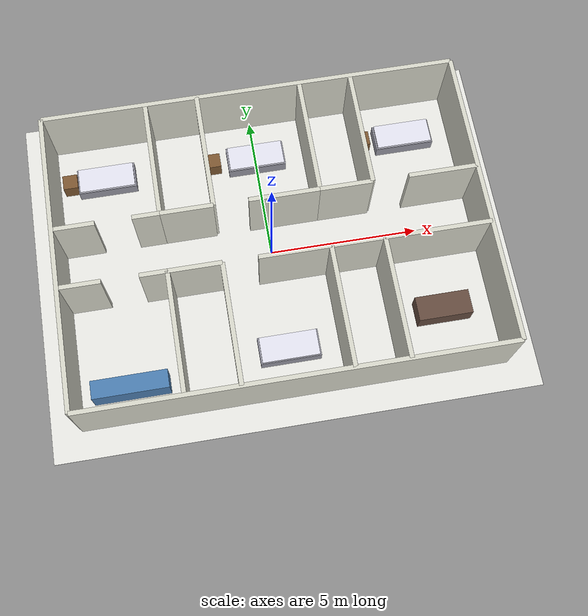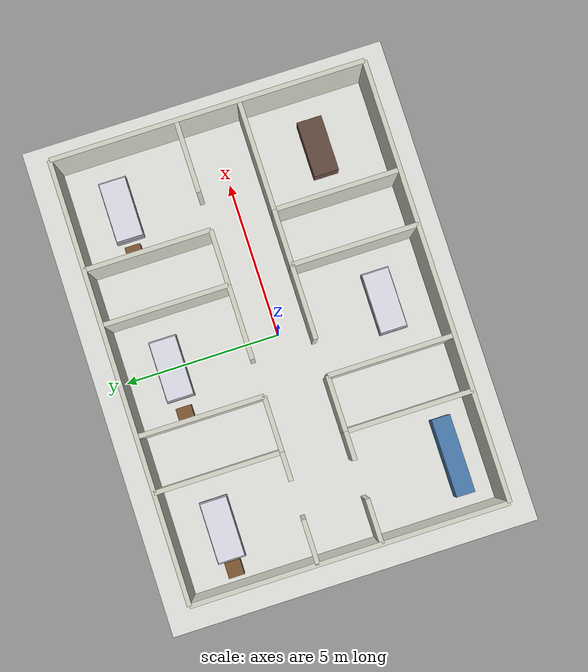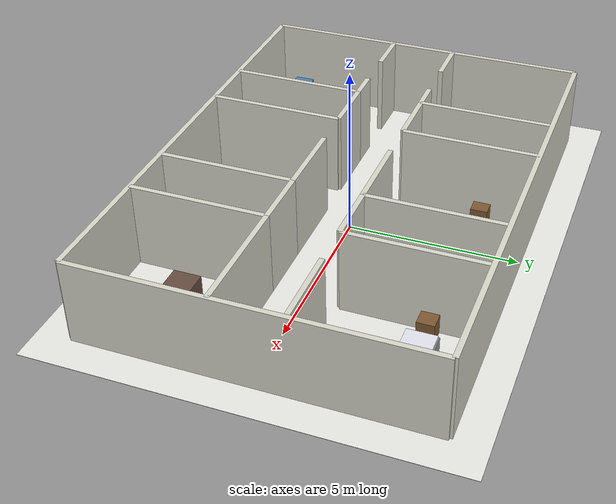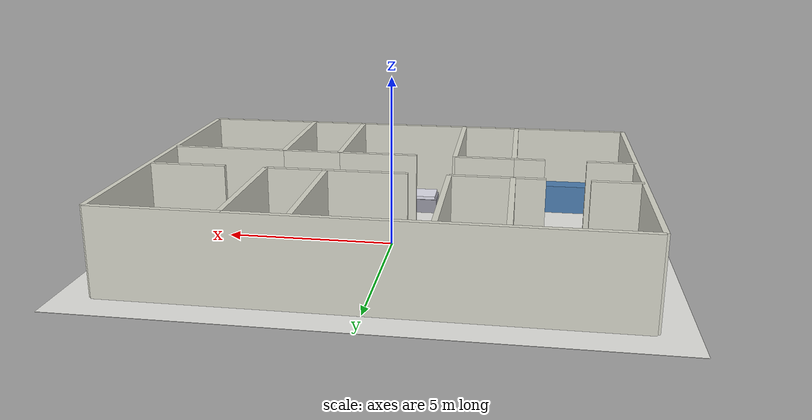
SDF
<?xml version="1.0" ?>
<sdf version="1.9">
  <world name="hospital_ward">

    <!-- Physics -->
    <physics name="1ms" type="ode">
      <max_step_size>0.001</max_step_size>
      <real_time_factor>1.0</real_time_factor>
      <real_time_update_rate>1000</real_time_update_rate>
    </physics>

    <!-- Plugins -->
    <plugin filename="gz-sim-physics-system" name="gz::sim::systems::Physics"/>
    <plugin filename="gz-sim-user-commands-system" name="gz::sim::systems::UserCommands"/>
    <plugin filename="gz-sim-scene-broadcaster-system" name="gz::sim::systems::SceneBroadcaster"/>
    <plugin filename="gz-sim-sensors-system" name="gz::sim::systems::Sensors">
      <render_engine>ogre2</render_engine>
    </plugin>
    <plugin filename="gz-sim-imu-system" name="gz::sim::systems::Imu"/>
    <plugin filename="gz-sim-contact-system" name="gz::sim::systems::Contact"/>

    <!-- Lighting -->
    <light type="directional" name="sun">
      <cast_shadows>true</cast_shadows>
      <pose>0 0 10 0 0 0</pose>
      <diffuse>0.9 0.9 0.88 1</diffuse>
      <specular>0.3 0.3 0.3 1</specular>
      <direction>-0.3 0.1 -0.9</direction>
    </light>
    <light type="point" name="corridor_light_1">
      <pose>-4 0 2.4 0 0 0</pose>
      <diffuse>0.8 0.8 0.75 1</diffuse>
      <intensity>0.5</intensity>
      <attenuation><range>10</range><constant>0.5</constant><linear>0.1</linear><quadratic>0.01</quadratic></attenuation>
    </light>
    <light type="point" name="corridor_light_2">
      <pose>3 0 2.4 0 0 0</pose>
      <diffuse>0.8 0.8 0.75 1</diffuse>
      <intensity>0.5</intensity>
      <attenuation><range>10</range><constant>0.5</constant><linear>0.1</linear><quadratic>0.01</quadratic></attenuation>
    </light>

    <gravity>0 0 -9.8</gravity>
    <magnetic_field>6e-06 2.3e-05 -4.2e-05</magnetic_field>
    <atmosphere type="adiabatic"/>

    <scene>
      <ambient>0.6 0.6 0.58 1</ambient>
      <background>0.7 0.75 0.8 1</background>
      <shadows>true</shadows>
    </scene>

    <!-- ========== FLOOR ========== -->
    <!-- Hospital: x=[-7,7], y=[-5,5], centered at origin -->
    <model name="hospital_floor">
      <static>true</static>
      <pose>0.0 0.0 -0.005 0 0 0</pose>
      <link name="link">
        <collision name="col"><geometry><box><size>16.0 12.0 0.01</size></box></geometry>
          <surface><friction><ode><mu>100</mu><mu2>50</mu2></ode></friction></surface>
        </collision>
        <visual name="vis"><geometry><box><size>16.0 12.0 0.01</size></box></geometry>
          <material><ambient>0.92 0.92 0.90 1</ambient><diffuse>0.92 0.92 0.90 1</diffuse></material>
        </visual>
      </link>
    </model>

    <!-- ========== OUTER WALLS ========== -->
    <model name="wall_south"><static>true</static>
      <pose>0.0 -5.0 1.25 0 0 0</pose>
      <link name="link">
        <collision name="c"><geometry><box><size>14.0 0.15 2.5</size></box></geometry></collision>
        <visual name="v"><geometry><box><size>14.0 0.15 2.5</size></box></geometry>
          <material><ambient>0.85 0.85 0.80 1</ambient><diffuse>0.85 0.85 0.80 1</diffuse></material></visual>
      </link>
    </model>
    <model name="wall_north"><static>true</static>
      <pose>0.0 5.0 1.25 0 0 0</pose>
      <link name="link">
        <collision name="c"><geometry><box><size>14.0 0.15 2.5</size></box></geometry></collision>
        <visual name="v"><geometry><box><size>14.0 0.15 2.5</size></box></geometry>
          <material><ambient>0.85 0.85 0.80 1</ambient><diffuse>0.85 0.85 0.80 1</diffuse></material></visual>
      </link>
    </model>
    <model name="wall_west"><static>true</static>
      <pose>-7.0 0.0 1.25 0 0 0</pose>
      <link name="link">
        <collision name="c"><geometry><box><size>0.15 10.0 2.5</size></box></geometry></collision>
        <visual name="v"><geometry><box><size>0.15 10.0 2.5</size></box></geometry>
          <material><ambient>0.85 0.85 0.80 1</ambient><diffuse>0.85 0.85 0.80 1</diffuse></material></visual>
      </link>
    </model>
    <model name="wall_east"><static>true</static>
      <pose>7.0 0.0 1.25 0 0 0</pose>
      <link name="link">
        <collision name="c"><geometry><box><size>0.15 10.0 2.5</size></box></geometry></collision>
        <visual name="v"><geometry><box><size>0.15 10.0 2.5</size></box></geometry>
          <material><ambient>0.85 0.85 0.80 1</ambient><diffuse>0.85 0.85 0.80 1</diffuse></material></visual>
      </link>
    </model>

    <!-- ========== CORRIDOR WALLS y=-1 (south corridor) ========== -->
    <!-- Pharmacy door gap: x=-5.6 to x=-4.4 -->
    <model name="corr_s1"><static>true</static><pose>-6.3 -1.0 1.25 0 0 0</pose>
      <link name="link">
        <collision name="c"><geometry><box><size>1.4 0.15 2.5</size></box></geometry></collision>
        <visual name="v"><geometry><box><size>1.4 0.15 2.5</size></box></geometry>
          <material><ambient>0.85 0.85 0.80 1</ambient><diffuse>0.85 0.85 0.80 1</diffuse></material></visual>
      </link>
    </model>
    <model name="corr_s2"><static>true</static><pose>-3.95 -1.0 1.25 0 0 0</pose>
      <link name="link">
        <collision name="c"><geometry><box><size>0.9 0.15 2.5</size></box></geometry></collision>
        <visual name="v"><geometry><box><size>0.9 0.15 2.5</size></box></geometry>
          <material><ambient>0.85 0.85 0.80 1</ambient><diffuse>0.85 0.85 0.80 1</diffuse></material></visual>
      </link>
    </model>
    <model name="corr_s3"><static>true</static><pose>-2.625 -1.0 1.25 0 0 0</pose>
      <link name="link">
        <collision name="c"><geometry><box><size>1.75 0.15 2.5</size></box></geometry></collision>
        <visual name="v"><geometry><box><size>1.75 0.15 2.5</size></box></geometry>
          <material><ambient>0.85 0.85 0.80 1</ambient><diffuse>0.85 0.85 0.80 1</diffuse></material></visual>
      </link>
    </model>
    <!-- Room 4 door gap: x=-1.75 to x=-0.6 -->
    <model name="corr_s4"><static>true</static><pose>0.575 -1.0 1.25 0 0 0</pose>
      <link name="link">
        <collision name="c"><geometry><box><size>2.35 0.15 2.5</size></box></geometry></collision>
        <visual name="v"><geometry><box><size>2.35 0.15 2.5</size></box></geometry>
          <material><ambient>0.85 0.85 0.80 1</ambient><diffuse>0.85 0.85 0.80 1</diffuse></material></visual>
      </link>
    </model>
    <model name="corr_s5"><static>true</static><pose>2.625 -1.0 1.25 0 0 0</pose>
      <link name="link">
        <collision name="c"><geometry><box><size>1.75 0.15 2.5</size></box></geometry></collision>
        <visual name="v"><geometry><box><size>1.75 0.15 2.5</size></box></geometry>
          <material><ambient>0.85 0.85 0.80 1</ambient><diffuse>0.85 0.85 0.80 1</diffuse></material></visual>
      </link>
    </model>
    <model name="corr_s6"><static>true</static><pose>5.25 -1.0 1.25 0 0 0</pose>
      <link name="link">
        <collision name="c"><geometry><box><size>3.5 0.15 2.5</size></box></geometry></collision>
        <visual name="v"><geometry><box><size>3.5 0.15 2.5</size></box></geometry>
          <material><ambient>0.85 0.85 0.80 1</ambient><diffuse>0.85 0.85 0.80 1</diffuse></material></visual>
      </link>
    </model>

    <!-- ========== CORRIDOR WALLS y=1 (north corridor) ========== -->
    <!-- Room 1 door gap: x=-5.6 to x=-4.4 -->
    <model name="corr_n1"><static>true</static><pose>-6.3 1.0 1.25 0 0 0</pose>
      <link name="link">
        <collision name="c"><geometry><box><size>1.4 0.15 2.5</size></box></geometry></collision>
        <visual name="v"><geometry><box><size>1.4 0.15 2.5</size></box></geometry>
          <material><ambient>0.85 0.85 0.80 1</ambient><diffuse>0.85 0.85 0.80 1</diffuse></material></visual>
      </link>
    </model>
    <model name="corr_n2"><static>true</static><pose>-3.95 1.0 1.25 0 0 0</pose>
      <link name="link">
        <collision name="c"><geometry><box><size>0.9 0.15 2.5</size></box></geometry></collision>
        <visual name="v"><geometry><box><size>0.9 0.15 2.5</size></box></geometry>
          <material><ambient>0.85 0.85 0.80 1</ambient><diffuse>0.85 0.85 0.80 1</diffuse></material></visual>
      </link>
    </model>
    <model name="corr_n3"><static>true</static><pose>-2.625 1.0 1.25 0 0 0</pose>
      <link name="link">
        <collision name="c"><geometry><box><size>1.75 0.15 2.5</size></box></geometry></collision>
        <visual name="v"><geometry><box><size>1.75 0.15 2.5</size></box></geometry>
          <material><ambient>0.85 0.85 0.80 1</ambient><diffuse>0.85 0.85 0.80 1</diffuse></material></visual>
      </link>
    </model>
    <!-- Room 2 door gap: x=-1.75 to x=-0.6 -->
    <model name="corr_n4"><static>true</static><pose>0.575 1.0 1.25 0 0 0</pose>
      <link name="link">
        <collision name="c"><geometry><box><size>2.35 0.15 2.5</size></box></geometry></collision>
        <visual name="v"><geometry><box><size>2.35 0.15 2.5</size></box></geometry>
          <material><ambient>0.85 0.85 0.80 1</ambient><diffuse>0.85 0.85 0.80 1</diffuse></material></visual>
      </link>
    </model>
    <model name="corr_n5"><static>true</static><pose>2.625 1.0 1.25 0 0 0</pose>
      <link name="link">
        <collision name="c"><geometry><box><size>1.75 0.15 2.5</size></box></geometry></collision>
        <visual name="v"><geometry><box><size>1.75 0.15 2.5</size></box></geometry>
          <material><ambient>0.85 0.85 0.80 1</ambient><diffuse>0.85 0.85 0.80 1</diffuse></material></visual>
      </link>
    </model>
    <!-- Room 3 door gap: x=3.5 to x=4.7 -->
    <model name="corr_n6"><static>true</static><pose>5.85 1.0 1.25 0 0 0</pose>
      <link name="link">
        <collision name="c"><geometry><box><size>2.3 0.15 2.5</size></box></geometry></collision>
        <visual name="v"><geometry><box><size>2.3 0.15 2.5</size></box></geometry>
          <material><ambient>0.85 0.85 0.80 1</ambient><diffuse>0.85 0.85 0.80 1</diffuse></material></visual>
      </link>
    </model>

    <!-- ========== ROOM DIVIDER WALLS (vertical) ========== -->
    <!-- Upper rooms (y=1 to y=5) -->
    <model name="div_u12"><static>true</static><pose>-3.5 3.0 1.25 0 0 0</pose>
      <link name="link">
        <collision name="c"><geometry><box><size>0.15 4.0 2.5</size></box></geometry></collision>
        <visual name="v"><geometry><box><size>0.15 4.0 2.5</size></box></geometry>
          <material><ambient>0.85 0.85 0.80 1</ambient><diffuse>0.85 0.85 0.80 1</diffuse></material></visual>
      </link>
    </model>
    <model name="div_u1r"><static>true</static><pose>-1.75 3.0 1.25 0 0 0</pose>
      <link name="link">
        <collision name="c"><geometry><box><size>0.15 4.0 2.5</size></box></geometry></collision>
        <visual name="v"><geometry><box><size>0.15 4.0 2.5</size></box></geometry>
          <material><ambient>0.85 0.85 0.80 1</ambient><diffuse>0.85 0.85 0.80 1</diffuse></material></visual>
      </link>
    </model>
    <model name="div_u23"><static>true</static><pose>1.75 3.0 1.25 0 0 0</pose>
      <link name="link">
        <collision name="c"><geometry><box><size>0.15 4.0 2.5</size></box></geometry></collision>
        <visual name="v"><geometry><box><size>0.15 4.0 2.5</size></box></geometry>
          <material><ambient>0.85 0.85 0.80 1</ambient><diffuse>0.85 0.85 0.80 1</diffuse></material></visual>
      </link>
    </model>
    <model name="div_u3l"><static>true</static><pose>3.5 3.0 1.25 0 0 0</pose>
      <link name="link">
        <collision name="c"><geometry><box><size>0.15 4.0 2.5</size></box></geometry></collision>
        <visual name="v"><geometry><box><size>0.15 4.0 2.5</size></box></geometry>
          <material><ambient>0.85 0.85 0.80 1</ambient><diffuse>0.85 0.85 0.80 1</diffuse></material></visual>
      </link>
    </model>
    <!-- Lower rooms (y=-5 to y=-1) -->
    <model name="div_l_pharm"><static>true</static><pose>-3.5 -3.0 1.25 0 0 0</pose>
      <link name="link">
        <collision name="c"><geometry><box><size>0.15 4.0 2.5</size></box></geometry></collision>
        <visual name="v"><geometry><box><size>0.15 4.0 2.5</size></box></geometry>
          <material><ambient>0.85 0.85 0.80 1</ambient><diffuse>0.85 0.85 0.80 1</diffuse></material></visual>
      </link>
    </model>
    <model name="div_l_r4l"><static>true</static><pose>-1.75 -3.0 1.25 0 0 0</pose>
      <link name="link">
        <collision name="c"><geometry><box><size>0.15 4.0 2.5</size></box></geometry></collision>
        <visual name="v"><geometry><box><size>0.15 4.0 2.5</size></box></geometry>
          <material><ambient>0.85 0.85 0.80 1</ambient><diffuse>0.85 0.85 0.80 1</diffuse></material></visual>
      </link>
    </model>
    <model name="div_l_r4r"><static>true</static><pose>1.75 -3.0 1.25 0 0 0</pose>
      <link name="link">
        <collision name="c"><geometry><box><size>0.15 4.0 2.5</size></box></geometry></collision>
        <visual name="v"><geometry><box><size>0.15 4.0 2.5</size></box></geometry>
          <material><ambient>0.85 0.85 0.80 1</ambient><diffuse>0.85 0.85 0.80 1</diffuse></material></visual>
      </link>
    </model>
    <model name="div_l_nurse"><static>true</static><pose>3.5 -3.0 1.25 0 0 0</pose>
      <link name="link">
        <collision name="c"><geometry><box><size>0.15 4.0 2.5</size></box></geometry></collision>
        <visual name="v"><geometry><box><size>0.15 4.0 2.5</size></box></geometry>
          <material><ambient>0.85 0.85 0.80 1</ambient><diffuse>0.85 0.85 0.80 1</diffuse></material></visual>
      </link>
    </model>

    <!-- ========== FURNITURE ========== -->
    <!-- Bed 1 (Room 1, upper-left) -->
    <model name="bed_01"><static>true</static><pose>-5.25 3.5 0 0 0 0</pose>
      <link name="frame"><pose>0 0 0.225 0 0 0</pose>
        <collision name="c"><geometry><box><size>2.0 0.9 0.45</size></box></geometry></collision>
        <visual name="v"><geometry><box><size>2.0 0.9 0.45</size></box></geometry>
          <material><ambient>0.6 0.6 0.65 1</ambient><diffuse>0.6 0.6 0.65 1</diffuse></material></visual>
      </link>
      <link name="mattress"><pose>0 0 0.5 0 0 0</pose>
        <collision name="c"><geometry><box><size>1.9 0.85 0.1</size></box></geometry></collision>
        <visual name="v"><geometry><box><size>1.9 0.85 0.1</size></box></geometry>
          <material><ambient>0.9 0.9 0.95 1</ambient><diffuse>0.9 0.9 0.95 1</diffuse></material></visual>
      </link>
    </model>
    <!-- Bed 2 (Room 2, upper-center) -->
    <model name="bed_02"><static>true</static><pose>0.0 3.5 0 0 0 0</pose>
      <link name="frame"><pose>0 0 0.225 0 0 0</pose>
        <collision name="c"><geometry><box><size>2.0 0.9 0.45</size></box></geometry></collision>
        <visual name="v"><geometry><box><size>2.0 0.9 0.45</size></box></geometry>
          <material><ambient>0.6 0.6 0.65 1</ambient><diffuse>0.6 0.6 0.65 1</diffuse></material></visual>
      </link>
      <link name="mattress"><pose>0 0 0.5 0 0 0</pose>
        <collision name="c"><geometry><box><size>1.9 0.85 0.1</size></box></geometry></collision>
        <visual name="v"><geometry><box><size>1.9 0.85 0.1</size></box></geometry>
          <material><ambient>0.9 0.9 0.95 1</ambient><diffuse>0.9 0.9 0.95 1</diffuse></material></visual>
      </link>
    </model>
    <!-- Bed 3 (Room 3, upper-right) -->
    <model name="bed_03"><static>true</static><pose>5.25 3.5 0 0 0 0</pose>
      <link name="frame"><pose>0 0 0.225 0 0 0</pose>
        <collision name="c"><geometry><box><size>2.0 0.9 0.45</size></box></geometry></collision>
        <visual name="v"><geometry><box><size>2.0 0.9 0.45</size></box></geometry>
          <material><ambient>0.6 0.6 0.65 1</ambient><diffuse>0.6 0.6 0.65 1</diffuse></material></visual>
      </link>
      <link name="mattress"><pose>0 0 0.5 0 0 0</pose>
        <collision name="c"><geometry><box><size>1.9 0.85 0.1</size></box></geometry></collision>
        <visual name="v"><geometry><box><size>1.9 0.85 0.1</size></box></geometry>
          <material><ambient>0.9 0.9 0.95 1</ambient><diffuse>0.9 0.9 0.95 1</diffuse></material></visual>
      </link>
    </model>
    <!-- Bed 4 (Room 4, lower-center) -->
    <model name="bed_04"><static>true</static><pose>0.0 -3.5 0 0 0 0</pose>
      <link name="frame"><pose>0 0 0.225 0 0 0</pose>
        <collision name="c"><geometry><box><size>2.0 0.9 0.45</size></box></geometry></collision>
        <visual name="v"><geometry><box><size>2.0 0.9 0.45</size></box></geometry>
          <material><ambient>0.6 0.6 0.65 1</ambient><diffuse>0.6 0.6 0.65 1</diffuse></material></visual>
      </link>
      <link name="mattress"><pose>0 0 0.5 0 0 0</pose>
        <collision name="c"><geometry><box><size>1.9 0.85 0.1</size></box></geometry></collision>
        <visual name="v"><geometry><box><size>1.9 0.85 0.1</size></box></geometry>
          <material><ambient>0.9 0.9 0.95 1</ambient><diffuse>0.9 0.9 0.95 1</diffuse></material></visual>
      </link>
    </model>

    <!-- Pharmacy counter -->
    <model name="pharmacy_counter"><static>true</static><pose>-5.25 -4.0 0.45 0 0 0</pose>
      <link name="link">
        <collision name="c"><geometry><box><size>2.5 0.6 0.9</size></box></geometry></collision>
        <visual name="v"><geometry><box><size>2.5 0.6 0.9</size></box></geometry>
          <material><ambient>0.3 0.5 0.7 1</ambient><diffuse>0.3 0.5 0.7 1</diffuse></material></visual>
      </link>
    </model>

    <!-- Nurse desk -->
    <model name="nurse_desk"><static>true</static><pose>5.25 -3.0 0.35 0 0 0</pose>
      <link name="link">
        <collision name="c"><geometry><box><size>1.8 0.8 0.7</size></box></geometry></collision>
        <visual name="v"><geometry><box><size>1.8 0.8 0.7</size></box></geometry>
          <material><ambient>0.4 0.3 0.25 1</ambient><diffuse>0.4 0.3 0.25 1</diffuse></material></visual>
      </link>
    </model>

    <!-- Bedside tables -->
    <model name="table_01"><static>true</static><pose>-6.5 3.5 0.3 0 0 0</pose>
      <link name="link">
        <collision name="c"><geometry><box><size>0.5 0.5 0.6</size></box></geometry></collision>
        <visual name="v"><geometry><box><size>0.5 0.5 0.6</size></box></geometry>
          <material><ambient>0.5 0.35 0.2 1</ambient><diffuse>0.5 0.35 0.2 1</diffuse></material></visual>
      </link>
    </model>
    <model name="table_02"><static>true</static><pose>-1.5 3.5 0.3 0 0 0</pose>
      <link name="link">
        <collision name="c"><geometry><box><size>0.5 0.5 0.6</size></box></geometry></collision>
        <visual name="v"><geometry><box><size>0.5 0.5 0.6</size></box></geometry>
          <material><ambient>0.5 0.35 0.2 1</ambient><diffuse>0.5 0.35 0.2 1</diffuse></material></visual>
      </link>
    </model>
    <model name="table_03"><static>true</static><pose>3.8 3.5 0.3 0 0 0</pose>
      <link name="link">
        <collision name="c"><geometry><box><size>0.5 0.5 0.6</size></box></geometry></collision>
        <visual name="v"><geometry><box><size>0.5 0.5 0.6</size></box></geometry>
          <material><ambient>0.5 0.35 0.2 1</ambient><diffuse>0.5 0.35 0.2 1</diffuse></material></visual>
      </link>
    </model>

  </world>
</sdf>
